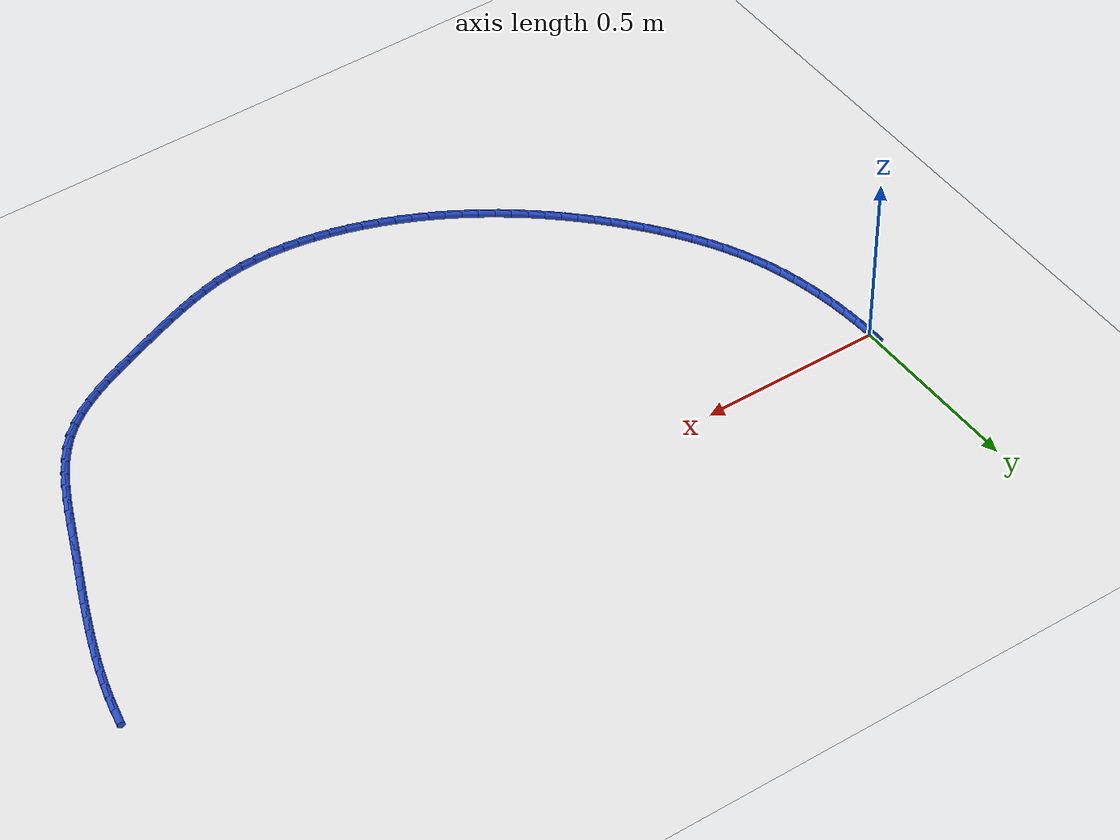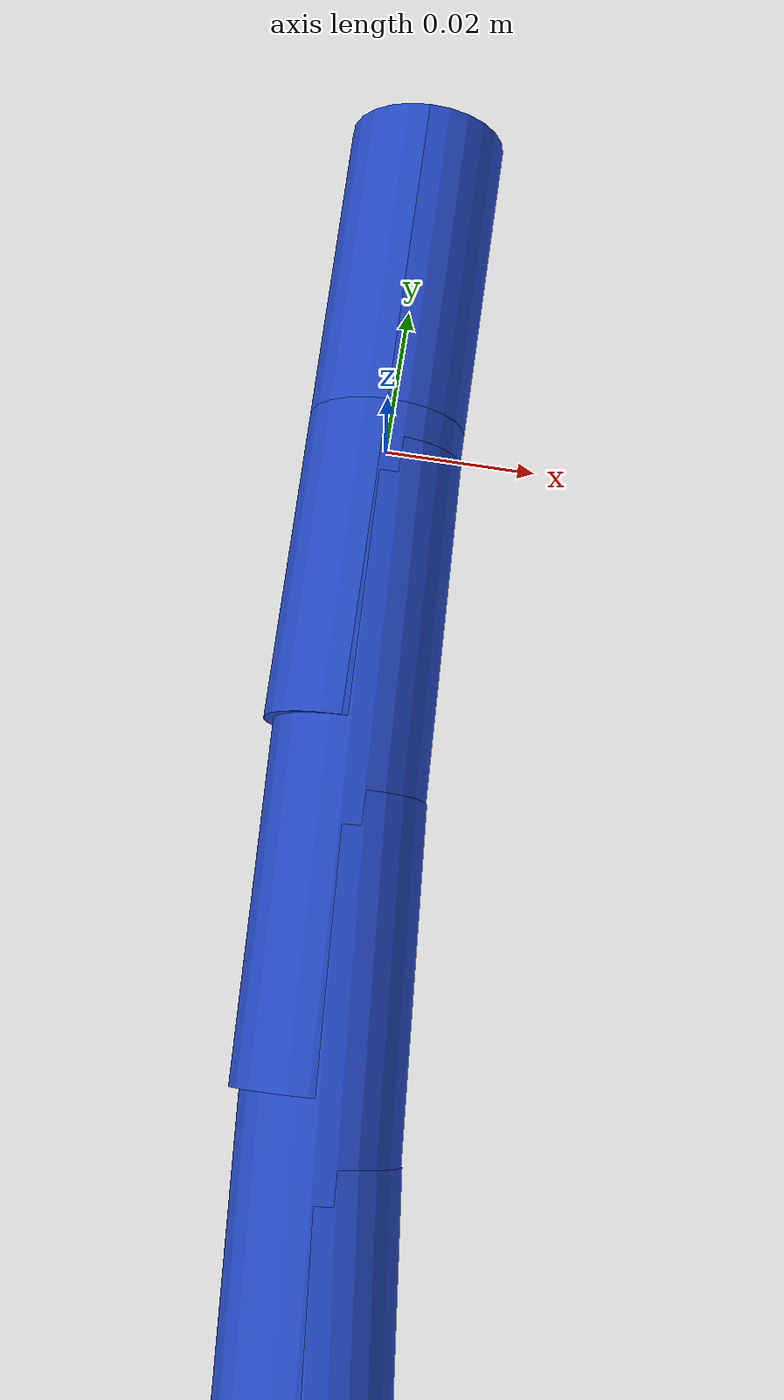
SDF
<sdf version="1.6">
 <world name="default">
  <model name="ground_plane">
   <static>1</static>
   <link name="link">
    <collision name="collision">
     <geometry><plane><normal>0 0 1</normal><size>100 100</size></plane></geometry>
     <surface><friction><ode><mu>100</mu><mu2>50</mu2></ode></friction></surface>
    </collision>
    <visual name="visual">
     <cast_shadows>0</cast_shadows>
     <geometry><plane><normal>0 0 1</normal><size>100 100</size></plane></geometry>
     <material>
      <script><uri>file://media/materials/scripts/gazebo.material</uri><name>Gazebo/WhiteGlow</name></script>
     </material>
    </visual>
   </link>
  </model>
  <model name="line">
   <link name="link_0">
    <pose>-6.071532165918825e-18 -1.3877787807814457e-17 0.01 0 1.57 -1.5556435990401796</pose>
    <collision name="collision">
     <geometry><cylinder><radius>0.01</radius><length>0.08</length></cylinder></geometry>
    </collision>
    <visual name="visual">
     <material>
      <script><name>Gazebo/Blue</name><uri>file://media/materials/scripts/gazebo.material</uri></script>
     </material>
     <geometry><cylinder><radius>0.01</radius><length>0.08</length></cylinder></geometry>
    </visual>
   </link>
   <link name="link_81">
    <pose>2.1964408561254753 0.00042516780103233134 0.01 0 1.57 1.3386483158262905</pose>
    <collision name="collision">
     <geometry><cylinder><radius>0.01</radius><length>0.08</length></cylinder></geometry>
    </collision>
    <visual name="visual">
     <material>
      <script><name>Gazebo/Blue</name><uri>file://media/materials/scripts/gazebo.material</uri></script>
     </material>
     <geometry><cylinder><radius>0.01</radius><length>0.08</length></cylinder></geometry>
    </visual>
   </link>
   <link name="link_82">
    <pose>2.186597181142099 -0.04121293306297822 0.01 0 1.57 1.306550108630638</pose>
    <collision name="collision">
     <geometry><cylinder><radius>0.01</radius><length>0.08</length></cylinder></geometry>
    </collision>
    <visual name="visual">
     <material>
      <script><name>Gazebo/Blue</name><uri>file://media/materials/scripts/gazebo.material</uri></script>
     </material>
     <geometry><cylinder><radius>0.01</radius><length>0.08</length></cylinder></geometry>
    </visual>
   </link>
   <link name="link_83">
    <pose>2.175453241974101 -0.0823993106524817 0.01 0 1.57 1.2773348397771405</pose>
    <collision name="collision">
     <geometry><cylinder><radius>0.01</radius><length>0.08</length></cylinder></geometry>
    </collision>
    <visual name="visual">
     <material>
      <script><name>Gazebo/Blue</name><uri>file://media/materials/scripts/gazebo.material</uri></script>
     </material>
     <geometry><cylinder><radius>0.01</radius><length>0.08</length></cylinder></geometry>
    </visual>
   </link>
   <link name="link_84">
    <pose>2.1631245672862285 -0.12319755091855733 0.01 0 1.57 1.25112295713858</pose>
    <collision name="collision">
     <geometry><cylinder><radius>0.01</radius><length>0.08</length></cylinder></geometry>
    </collision>
    <visual name="visual">
     <material>
      <script><name>Gazebo/Blue</name><uri>file://media/materials/scripts/gazebo.material</uri></script>
     </material>
     <geometry><cylinder><radius>0.01</radius><length>0.08</length></cylinder></geometry>
    </visual>
   </link>
   <link name="link_85">
    <pose>2.1497266857432287 -0.16367123981228357 0.01 0 1.57 1.2279957565766804</pose>
    <collision name="collision">
     <geometry><cylinder><radius>0.01</radius><length>0.08</length></cylinder></geometry>
    </collision>
    <visual name="visual">
     <material>
      <script><name>Gazebo/Blue</name><uri>file://media/materials/scripts/gazebo.material</uri></script>
     </material>
     <geometry><cylinder><radius>0.01</radius><length>0.08</length></cylinder></geometry>
    </visual>
   </link>
   <link name="link_86">
    <pose>2.135375126009849 -0.20388396328473873 0.01 0 1.57 1.208001410424227</pose>
    <collision name="collision">
     <geometry><cylinder><radius>0.01</radius><length>0.08</length></cylinder></geometry>
    </collision>
    <visual name="visual">
     <material>
      <script><name>Gazebo/Blue</name><uri>file://media/materials/scripts/gazebo.material</uri></script>
     </material>
     <geometry><cylinder><radius>0.01</radius><length>0.08</length></cylinder></geometry>
    </visual>
   </link>
   <link name="link_87">
    <pose>2.1201854167508367 -0.24389930728700207 0.01 0 1.57 1.1911611524413928</pose>
    <collision name="collision">
     <geometry><cylinder><radius>0.01</radius><length>0.08</length></cylinder></geometry>
    </collision>
    <visual name="visual">
     <material>
      <script><name>Gazebo/Blue</name><uri>file://media/materials/scripts/gazebo.material</uri></script>
     </material>
     <geometry><cylinder><radius>0.01</radius><length>0.08</length></cylinder></geometry>
    </visual>
   </link>
   <link name="link_88">
    <pose>2.1042730866309394 -0.2837808577701505 0.01 0 1.57 1.1774751291894925</pose>
    <collision name="collision">
     <geometry><cylinder><radius>0.01</radius><length>0.08</length></cylinder></geometry>
    </collision>
    <visual name="visual">
     <material>
      <script><name>Gazebo/Blue</name><uri>file://media/materials/scripts/gazebo.material</uri></script>
     </material>
     <geometry><cylinder><radius>0.01</radius><length>0.08</length></cylinder></geometry>
    </visual>
   </link>
   <link name="link_89">
    <pose>2.0877536643149037 -0.3235922006852631 0.01 0 1.57 1.166927584554515</pose>
    <collision name="collision">
     <geometry><cylinder><radius>0.01</radius><length>0.08</length></cylinder></geometry>
    </collision>
    <visual name="visual">
     <material>
      <script><name>Gazebo/Blue</name><uri>file://media/materials/scripts/gazebo.material</uri></script>
     </material>
     <geometry><cylinder><radius>0.01</radius><length>0.08</length></cylinder></geometry>
    </visual>
   </link>
   <link name="link_90">
    <pose>2.070742678467478 -0.36339692198341844 0.01 0 1.57 1.1594911807247412</pose>
    <collision name="collision">
     <geometry><cylinder><radius>0.01</radius><length>0.08</length></cylinder></geometry>
    </collision>
    <visual name="visual">
     <material>
      <script><name>Gazebo/Blue</name><uri>file://media/materials/scripts/gazebo.material</uri></script>
     </material>
     <geometry><cylinder><radius>0.01</radius><length>0.08</length></cylinder></geometry>
    </visual>
   </link>
   <link name="link_91">
    <pose>2.0533556577534093 -0.403258607615695 0.01 0 1.57 1.1551303654355667</pose>
    <collision name="collision">
     <geometry><cylinder><radius>0.01</radius><length>0.08</length></cylinder></geometry>
    </collision>
    <visual name="visual">
     <material>
      <script><name>Gazebo/Blue</name><uri>file://media/materials/scripts/gazebo.material</uri></script>
     </material>
     <geometry><cylinder><radius>0.01</radius><length>0.08</length></cylinder></geometry>
    </visual>
   </link>
   <link name="link_92">
    <pose>2.035708130837444 -0.4432408435331716 0.01 0 1.57 1.1538037708779738</pose>
    <collision name="collision">
     <geometry><cylinder><radius>0.01</radius><length>0.08</length></cylinder></geometry>
    </collision>
    <visual name="visual">
     <material>
      <script><name>Gazebo/Blue</name><uri>file://media/materials/scripts/gazebo.material</uri></script>
     </material>
     <geometry><cylinder><radius>0.01</radius><length>0.08</length></cylinder></geometry>
    </visual>
   </link>
   <link name="link_93">
    <pose>2.0179156263843305 -0.4834072156869254 0.01 0 1.57 1.1554656788090165</pose>
    <collision name="collision">
     <geometry><cylinder><radius>0.01</radius><length>0.08</length></cylinder></geometry>
    </collision>
    <visual name="visual">
     <material>
      <script><name>Gazebo/Blue</name><uri>file://media/materials/scripts/gazebo.material</uri></script>
     </material>
     <geometry><cylinder><radius>0.01</radius><length>0.08</length></cylinder></geometry>
    </visual>
   </link>
   <link name="link_94">
    <pose>2.0000936730588164 -0.5238213100280357 0.01 0 1.57 1.159272365273835</pose>
    <collision name="collision">
     <geometry><cylinder><radius>0.01</radius><length>0.08</length></cylinder></geometry>
    </collision>
    <visual name="visual">
     <material>
      <script><name>Gazebo/Blue</name><uri>file://media/materials/scripts/gazebo.material</uri></script>
     </material>
     <geometry><cylinder><radius>0.01</radius><length>0.08</length></cylinder></geometry>
    </visual>
   </link>
   <link name="link_95">
    <pose>1.9823307757599986 -0.5645204308134997 0.01 0 1.57 1.1565465748614017</pose>
    <collision name="collision">
     <geometry><cylinder><radius>0.01</radius><length>0.08</length></cylinder></geometry>
    </collision>
    <visual name="visual">
     <material>
      <script><name>Gazebo/Blue</name><uri>file://media/materials/scripts/gazebo.material</uri></script>
     </material>
     <geometry><cylinder><radius>0.01</radius><length>0.08</length></cylinder></geometry>
    </visual>
   </link>
   <link name="link_96">
    <pose>1.964420182666547 -0.6052547333181036 0.01 0 1.57 1.1419255344002606</pose>
    <collision name="collision">
     <geometry><cylinder><radius>0.01</radius><length>0.08</length></cylinder></geometry>
    </collision>
    <visual name="visual">
     <material>
      <script><name>Gazebo/Blue</name><uri>file://media/materials/scripts/gazebo.material</uri></script>
     </material>
     <geometry><cylinder><radius>0.01</radius><length>0.08</length></cylinder></geometry>
    </visual>
   </link>
   <link name="link_97">
    <pose>1.9459732579769489 -0.6455974833635671 0.01 0 1.57 1.115000253752189</pose>
    <collision name="collision">
     <geometry><cylinder><radius>0.01</radius><length>0.08</length></cylinder></geometry>
    </collision>
    <visual name="visual">
     <material>
      <script><name>Gazebo/Blue</name><uri>file://media/materials/scripts/gazebo.material</uri></script>
     </material>
     <geometry><cylinder><radius>0.01</radius><length>0.08</length></cylinder></geometry>
    </visual>
   </link>
   <link name="link_98">
    <pose>1.9265986986261592 -0.685119352751036 0.01 0 1.57 1.0751210516949843</pose>
    <collision name="collision">
     <geometry><cylinder><radius>0.01</radius><length>0.08</length></cylinder></geometry>
    </collision>
    <visual name="visual">
     <material>
      <script><name>Gazebo/Blue</name><uri>file://media/materials/scripts/gazebo.material</uri></script>
     </material>
     <geometry><cylinder><radius>0.01</radius><length>0.08</length></cylinder></geometry>
    </visual>
   </link>
   <link name="link_99">
    <pose>1.905905201549135 -0.7233910132816553 0.01 0 1.57 1.0214139514335978</pose>
    <collision name="collision">
     <geometry><cylinder><radius>0.01</radius><length>0.08</length></cylinder></geometry>
    </collision>
    <visual name="visual">
     <material>
      <script><name>Gazebo/Blue</name><uri>file://media/materials/scripts/gazebo.material</uri></script>
     </material>
     <geometry><cylinder><radius>0.01</radius><length>0.08</length></cylinder></geometry>
    </visual>
   </link>
   <link name="link_100">
    <pose>1.8835014636808318 -0.7599831367565699 0.01 0 1.57 0.9529631503722887</pose>
    <collision name="collision">
     <geometry><cylinder><radius>0.01</radius><length>0.08</length></cylinder></geometry>
    </collision>
    <visual name="visual">
     <material>
      <script><name>Gazebo/Blue</name><uri>file://media/materials/scripts/gazebo.material</uri></script>
     </material>
     <geometry><cylinder><radius>0.01</radius><length>0.08</length></cylinder></geometry>
    </visual>
   </link>
   <link name="link_101">
    <pose>1.8589961819562049 -0.7944663949769253 0.01 0 1.57 0.8691291193887722</pose>
    <collision name="collision">
     <geometry><cylinder><radius>0.01</radius><length>0.08</length></cylinder></geometry>
    </collision>
    <visual name="visual">
     <material>
      <script><name>Gazebo/Blue</name><uri>file://media/materials/scripts/gazebo.material</uri></script>
     </material>
     <geometry><cylinder><radius>0.01</radius><length>0.08</length></cylinder></geometry>
    </visual>
   </link>
   <link name="link_102">
    <pose>1.8319980533102118 -0.8264114597438659 0.01 0 1.57 0.7702380405950181</pose>
    <collision name="collision">
     <geometry><cylinder><radius>0.01</radius><length>0.08</length></cylinder></geometry>
    </collision>
    <visual name="visual">
     <material>
      <script><name>Gazebo/Blue</name><uri>file://media/materials/scripts/gazebo.material</uri></script>
     </material>
     <geometry><cylinder><radius>0.01</radius><length>0.08</length></cylinder></geometry>
    </visual>
   </link>
   <link name="link_103">
    <pose>1.802121859328572 -0.8553952606084043 0.01 0 1.57 0.6687495687025617</pose>
    <collision name="collision">
     <geometry><cylinder><radius>0.01</radius><length>0.08</length></cylinder></geometry>
    </collision>
    <visual name="visual">
     <material>
      <script><name>Gazebo/Blue</name><uri>file://media/materials/scripts/gazebo.material</uri></script>
     </material>
     <geometry><cylinder><radius>0.01</radius><length>0.08</length></cylinder></geometry>
    </visual>
   </link>
   <link name="link_104">
    <pose>1.7693057177101876 -0.881327261657721 0.01 0 1.57 0.5825405605768036</pose>
    <collision name="collision">
     <geometry><cylinder><radius>0.01</radius><length>0.08</length></cylinder></geometry>
    </collision>
    <visual name="visual">
     <material>
      <script><name>Gazebo/Blue</name><uri>file://media/materials/scripts/gazebo.material</uri></script>
     </material>
     <geometry><cylinder><radius>0.01</radius><length>0.08</length></cylinder></geometry>
    </visual>
   </link>
   <link name="link_105">
    <pose>1.733966283904288 -0.9046090784039568 0.01 0 1.57 0.5130246278094135</pose>
    <collision name="collision">
     <geometry><cylinder><radius>0.01</radius><length>0.08</length></cylinder></geometry>
    </collision>
    <visual name="visual">
     <material>
      <script><name>Gazebo/Blue</name><uri>file://media/materials/scripts/gazebo.material</uri></script>
     </material>
     <geometry><cylinder><radius>0.01</radius><length>0.08</length></cylinder></geometry>
    </visual>
   </link>
   <link name="link_106">
    <pose>1.696558841707172 -0.9256820536243247 0.01 0 1.57 0.4594439207479052</pose>
    <collision name="collision">
     <geometry><cylinder><radius>0.01</radius><length>0.08</length></cylinder></geometry>
    </collision>
    <visual name="visual">
     <material>
      <script><name>Gazebo/Blue</name><uri>file://media/materials/scripts/gazebo.material</uri></script>
     </material>
     <geometry><cylinder><radius>0.01</radius><length>0.08</length></cylinder></geometry>
    </visual>
   </link>
   <link name="link_107">
    <pose>1.6575386749151406 -0.944987530096036 0.01 0 1.57 0.420769685211544</pose>
    <collision name="collision">
     <geometry><cylinder><radius>0.01</radius><length>0.08</length></cylinder></geometry>
    </collision>
    <visual name="visual">
     <material>
      <script><name>Gazebo/Blue</name><uri>file://media/materials/scripts/gazebo.material</uri></script>
     </material>
     <geometry><cylinder><radius>0.01</radius><length>0.08</length></cylinder></geometry>
    </visual>
   </link>
   <link name="link_108">
    <pose>1.6173610673244907 -0.9629668505963026 0.01 0 1.57 0.3960675543929409</pose>
    <collision name="collision">
     <geometry><cylinder><radius>0.01</radius><length>0.08</length></cylinder></geometry>
    </collision>
    <visual name="visual">
     <material>
      <script><name>Gazebo/Blue</name><uri>file://media/materials/scripts/gazebo.material</uri></script>
     </material>
     <geometry><cylinder><radius>0.01</radius><length>0.08</length></cylinder></geometry>
    </visual>
   </link>
   <link name="link_109">
    <pose>1.5764813027315216 -0.9800613579023368 0.01 0 1.57 0.3846995755682915</pose>
    <collision name="collision">
     <geometry><cylinder><radius>0.01</radius><length>0.08</length></cylinder></geometry>
    </collision>
    <visual name="visual">
     <material>
      <script><name>Gazebo/Blue</name><uri>file://media/materials/scripts/gazebo.material</uri></script>
     </material>
     <geometry><cylinder><radius>0.01</radius><length>0.08</length></cylinder></geometry>
    </visual>
   </link>
   <link name="link_110">
    <pose>1.5353546649325327 -0.9967123947913508 0.01 0 1.57 0.3830966818456088</pose>
    <collision name="collision">
     <geometry><cylinder><radius>0.01</radius><length>0.08</length></cylinder></geometry>
    </collision>
    <visual name="visual">
     <material>
      <script><name>Gazebo/Blue</name><uri>file://media/materials/scripts/gazebo.material</uri></script>
     </material>
     <geometry><cylinder><radius>0.01</radius><length>0.08</length></cylinder></geometry>
    </visual>
   </link>
   <link name="link_111">
    <pose>1.4943497888446822 -1.0132376828396994 0.01 0 1.57 0.3776451761244076</pose>
    <collision name="collision">
     <geometry><cylinder><radius>0.01</radius><length>0.08</length></cylinder></geometry>
    </collision>
    <visual name="visual">
     <material>
      <script><name>Gazebo/Blue</name><uri>file://media/materials/scripts/gazebo.material</uri></script>
     </material>
     <geometry><cylinder><radius>0.01</radius><length>0.08</length></cylinder></geometry>
    </visual>
   </link>
   <link name="link_112">
    <pose>1.4534811405801795 -1.0294496540757394 0.01 0 1.57 0.36474771422855873</pose>
    <collision name="collision">
     <geometry><cylinder><radius>0.01</radius><length>0.08</length></cylinder></geometry>
    </collision>
    <visual name="visual">
     <material>
      <script><name>Gazebo/Blue</name><uri>file://media/materials/scripts/gazebo.material</uri></script>
     </material>
     <geometry><cylinder><radius>0.01</radius><length>0.08</length></cylinder></geometry>
    </visual>
   </link>
   <link name="link_113">
    <pose>1.4126727095408893 -1.0450316581935508 0.01 0 1.57 0.34422491939476557</pose>
    <collision name="collision">
     <geometry><cylinder><radius>0.01</radius><length>0.08</length></cylinder></geometry>
    </collision>
    <visual name="visual">
     <material>
      <script><name>Gazebo/Blue</name><uri>file://media/materials/scripts/gazebo.material</uri></script>
     </material>
     <geometry><cylinder><radius>0.01</radius><length>0.08</length></cylinder></geometry>
    </visual>
   </link>
   <link name="link_114">
    <pose>1.3718484850955617 -1.0596670448399637 0.01 0 1.57 0.3158758731033289</pose>
    <collision name="collision">
     <geometry><cylinder><radius>0.01</radius><length>0.08</length></cylinder></geometry>
    </collision>
    <visual name="visual">
     <material>
      <script><name>Gazebo/Blue</name><uri>file://media/materials/scripts/gazebo.material</uri></script>
     </material>
     <geometry><cylinder><radius>0.01</radius><length>0.08</length></cylinder></geometry>
    </visual>
   </link>
   <link name="link_115">
    <pose>1.3309324566129448 -1.0730391636618088 0.01 0 1.57 0.2795135177924136</pose>
    <collision name="collision">
     <geometry><cylinder><radius>0.01</radius><length>0.08</length></cylinder></geometry>
    </collision>
    <visual name="visual">
     <material>
      <script><name>Gazebo/Blue</name><uri>file://media/materials/scripts/gazebo.material</uri></script>
     </material>
     <geometry><cylinder><radius>0.01</radius><length>0.08</length></cylinder></geometry>
    </visual>
   </link>
   <link name="link_116">
    <pose>1.2898486134617875 -1.0848313643059166 0.01 0 1.57 0.23501850627110452</pose>
    <collision name="collision">
     <geometry><cylinder><radius>0.01</radius><length>0.08</length></cylinder></geometry>
    </collision>
    <visual name="visual">
     <material>
      <script><name>Gazebo/Blue</name><uri>file://media/materials/scripts/gazebo.material</uri></script>
     </material>
     <geometry><cylinder><radius>0.01</radius><length>0.08</length></cylinder></geometry>
    </visual>
   </link>
   <link name="link_117">
    <pose>1.2485209450108399 -1.0947269964191175 0.01 0 1.57 0.18241224618610427</pose>
    <collision name="collision">
     <geometry><cylinder><radius>0.01</radius><length>0.08</length></cylinder></geometry>
    </collision>
    <visual name="visual">
     <material>
      <script><name>Gazebo/Blue</name><uri>file://media/materials/scripts/gazebo.material</uri></script>
     </material>
     <geometry><cylinder><radius>0.01</radius><length>0.08</length></cylinder></geometry>
    </visual>
   </link>
   <link name="link_118">
    <pose>1.206873440628851 -1.102409409648242 0.01 0 1.57 0.12195500875876021</pose>
    <collision name="collision">
     <geometry><cylinder><radius>0.01</radius><length>0.08</length></cylinder></geometry>
    </collision>
    <visual name="visual">
     <material>
      <script><name>Gazebo/Blue</name><uri>file://media/materials/scripts/gazebo.material</uri></script>
     </material>
     <geometry><cylinder><radius>0.01</radius><length>0.08</length></cylinder></geometry>
    </visual>
   </link>
   <link name="link_119">
    <pose>1.1648302709159835 -1.1075623567808714 0.01 0 1.57 0.05711761166594266</pose>
    <collision name="collision">
     <geometry><cylinder><radius>0.01</radius><length>0.08</length></cylinder></geometry>
    </collision>
    <visual name="visual">
     <material>
      <script><name>Gazebo/Blue</name><uri>file://media/materials/scripts/gazebo.material</uri></script>
     </material>
     <geometry><cylinder><radius>0.01</radius><length>0.08</length></cylinder></geometry>
    </visual>
   </link>
   <link name="link_120">
    <pose>1.1223698424020705 -1.1099902358773572 0.01 0 1.57 -0.004766423676371933</pose>
    <collision name="collision">
     <geometry><cylinder><radius>0.01</radius><length>0.08</length></cylinder></geometry>
    </collision>
    <visual name="visual">
     <material>
      <script><name>Gazebo/Blue</name><uri>file://media/materials/scripts/gazebo.material</uri></script>
     </material>
     <geometry><cylinder><radius>0.01</radius><length>0.08</length></cylinder></geometry>
    </visual>
   </link>
   <link name="link_121">
    <pose>1.0796004507642607 -1.1097863772926213 0.01 0 1.57 -0.06277770039831199</pose>
    <collision name="collision">
     <geometry><cylinder><radius>0.01</radius><length>0.08</length></cylinder></geometry>
    </collision>
    <visual name="visual">
     <material>
      <script><name>Gazebo/Blue</name><uri>file://media/materials/scripts/gazebo.material</uri></script>
     </material>
     <geometry><cylinder><radius>0.01</radius><length>0.08</length></cylinder></geometry>
    </visual>
   </link>
   <link name="link_122">
    <pose>1.0366494309230476 -1.1070864632822621 0.01 0 1.57 -0.11712797771402937</pose>
    <collision name="collision">
     <geometry><cylinder><radius>0.01</radius><length>0.08</length></cylinder></geometry>
    </collision>
    <visual name="visual">
     <material>
      <script><name>Gazebo/Blue</name><uri>file://media/materials/scripts/gazebo.material</uri></script>
     </material>
     <geometry><cylinder><radius>0.01</radius><length>0.08</length></cylinder></geometry>
    </visual>
   </link>
   <link name="link_123">
    <pose>0.9936441177989223 -1.1020261761018784 0.01 0 1.57 -0.16808434238684916</pose>
    <collision name="collision">
     <geometry><cylinder><radius>0.01</radius><length>0.08</length></cylinder></geometry>
    </collision>
    <visual name="visual">
     <material>
      <script><name>Gazebo/Blue</name><uri>file://media/materials/scripts/gazebo.material</uri></script>
     </material>
     <geometry><cylinder><radius>0.01</radius><length>0.08</length></cylinder></geometry>
    </visual>
   </link>
   <link name="link_124">
    <pose>0.9507118463123772 -1.0947411980070685 0.01 0 1.57 -0.21594687541972785</pose>
    <collision name="collision">
     <geometry><cylinder><radius>0.01</radius><length>0.08</length></cylinder></geometry>
    </collision>
    <visual name="visual">
     <material>
      <script><name>Gazebo/Blue</name><uri>file://media/materials/scripts/gazebo.material</uri></script>
     </material>
     <geometry><cylinder><radius>0.01</radius><length>0.08</length></cylinder></geometry>
    </visual>
   </link>
   <link name="link_125">
    <pose>0.9079799513839042 -1.0853672112534314 0.01 0 1.57 -0.26103235296296673</pose>
    <collision name="collision">
     <geometry><cylinder><radius>0.01</radius><length>0.08</length></cylinder></geometry>
    </collision>
    <visual name="visual">
     <material>
      <script><name>Gazebo/Blue</name><uri>file://media/materials/scripts/gazebo.material</uri></script>
     </material>
     <geometry><cylinder><radius>0.01</radius><length>0.08</length></cylinder></geometry>
    </visual>
   </link>
   <link name="link_126">
    <pose>0.865575767933995 -1.0740398980965657 0.01 0 1.57 -0.3036632955091763</pose>
    <collision name="collision">
     <geometry><cylinder><radius>0.01</radius><length>0.08</length></cylinder></geometry>
    </collision>
    <visual name="visual">
     <material>
      <script><name>Gazebo/Blue</name><uri>file://media/materials/scripts/gazebo.material</uri></script>
     </material>
     <geometry><cylinder><radius>0.01</radius><length>0.08</length></cylinder></geometry>
    </visual>
   </link>
   <link name="link_127">
    <pose>0.8236266308831433 -1.06089494079207 0.01 0 1.57 -0.3441614344299338</pose>
    <collision name="collision">
     <geometry><cylinder><radius>0.01</radius><length>0.08</length></cylinder></geometry>
    </collision>
    <visual name="visual">
     <material>
      <script><name>Gazebo/Blue</name><uri>file://media/materials/scripts/gazebo.material</uri></script>
     </material>
     <geometry><cylinder><radius>0.01</radius><length>0.08</length></cylinder></geometry>
    </visual>
   </link>
   <link name="link_128">
    <pose>0.7822598751518404 -1.0460680215955434 0.01 0 1.57 -0.38284487604236295</pose>
    <collision name="collision">
     <geometry><cylinder><radius>0.01</radius><length>0.08</length></cylinder></geometry>
    </collision>
    <visual name="visual">
     <material>
      <script><name>Gazebo/Blue</name><uri>file://media/materials/scripts/gazebo.material</uri></script>
     </material>
     <geometry><cylinder><radius>0.01</radius><length>0.08</length></cylinder></geometry>
    </visual>
   </link>
   <link name="link_129">
    <pose>0.7416028098062205 -1.0296948032508264 0.01 0 1.57 -0.4202095894191098</pose>
    <collision name="collision">
     <geometry><cylinder><radius>0.01</radius><length>0.08</length></cylinder></geometry>
    </collision>
    <visual name="visual">
     <material>
      <script><name>Gazebo/Blue</name><uri>file://media/materials/scripts/gazebo.material</uri></script>
     </material>
     <geometry><cylinder><radius>0.01</radius><length>0.08</length></cylinder></geometry>
    </visual>
   </link>
   <link name="link_130">
    <pose>0.7017544687707683 -1.0118896098280485 0.01 0 1.57 -0.4569316196711439</pose>
    <collision name="collision">
     <geometry><cylinder><radius>0.01</radius><length>0.08</length></cylinder></geometry>
    </collision>
    <visual name="visual">
     <material>
      <script><name>Gazebo/Blue</name><uri>file://media/materials/scripts/gazebo.material</uri></script>
     </material>
     <geometry><cylinder><radius>0.01</radius><length>0.08</length></cylinder></geometry>
    </visual>
   </link>
   <link name="link_131">
    <pose>0.6627316553565554 -0.9927047076276366 0.01 0 1.57 -0.4930649117595983</pose>
    <collision name="collision">
     <geometry><cylinder><radius>0.01</radius><length>0.08</length></cylinder></geometry>
    </collision>
    <visual name="visual">
     <material>
      <script><name>Gazebo/Blue</name><uri>file://media/materials/scripts/gazebo.material</uri></script>
     </material>
     <geometry><cylinder><radius>0.01</radius><length>0.08</length></cylinder></geometry>
    </visual>
   </link>
   <link name="link_132">
    <pose>0.624536307318428 -0.9721811442174012 0.01 0 1.57 -0.5285610413310684</pose>
    <collision name="collision">
     <geometry><cylinder><radius>0.01</radius><length>0.08</length></cylinder></geometry>
    </collision>
    <visual name="visual">
     <material>
      <script><name>Gazebo/Blue</name><uri>file://media/materials/scripts/gazebo.material</uri></script>
     </material>
     <geometry><cylinder><radius>0.01</radius><length>0.08</length></cylinder></geometry>
    </visual>
   </link>
   <link name="link_133">
    <pose>0.5871703624112307 -0.9503599671651525 0.01 0 1.57 -0.5633799745570102</pose>
    <collision name="collision">
     <geometry><cylinder><radius>0.01</radius><length>0.08</length></cylinder></geometry>
    </collision>
    <visual name="visual">
     <material>
      <script><name>Gazebo/Blue</name><uri>file://media/materials/scripts/gazebo.material</uri></script>
     </material>
     <geometry><cylinder><radius>0.01</radius><length>0.08</length></cylinder></geometry>
    </visual>
   </link>
   <link name="link_134">
    <pose>0.550635758389808 -0.9272822240387006 0.01 0 1.57 -0.59748995071038</pose>
    <collision name="collision">
     <geometry><cylinder><radius>0.01</radius><length>0.08</length></cylinder></geometry>
    </collision>
    <visual name="visual">
     <material>
      <script><name>Gazebo/Blue</name><uri>file://media/materials/scripts/gazebo.material</uri></script>
     </material>
     <geometry><cylinder><radius>0.01</radius><length>0.08</length></cylinder></geometry>
    </visual>
   </link>
   <link name="link_135">
    <pose>0.5149344330090053 -0.9029889624058555 0.01 0 1.57 -0.6308672020288157</pose>
    <collision name="collision">
     <geometry><cylinder><radius>0.01</radius><length>0.08</length></cylinder></geometry>
    </collision>
    <visual name="visual">
     <material>
      <script><name>Gazebo/Blue</name><uri>file://media/materials/scripts/gazebo.material</uri></script>
     </material>
     <geometry><cylinder><radius>0.01</radius><length>0.08</length></cylinder></geometry>
    </visual>
   </link>
   <link name="link_136">
    <pose>0.48006832402366695 -0.877521229834427 0.01 0 1.57 -0.6634955424736059</pose>
    <collision name="collision">
     <geometry><cylinder><radius>0.01</radius><length>0.08</length></cylinder></geometry>
    </collision>
    <visual name="visual">
     <material>
      <script><name>Gazebo/Blue</name><uri>file://media/materials/scripts/gazebo.material</uri></script>
     </material>
     <geometry><cylinder><radius>0.01</radius><length>0.08</length></cylinder></geometry>
    </visual>
   </link>
   <link name="link_137">
    <pose>0.4460393691886388 -0.8509200738922262 0.01 0 1.57 -0.6953658576642986</pose>
    <collision name="collision">
     <geometry><cylinder><radius>0.01</radius><length>0.08</length></cylinder></geometry>
    </collision>
    <visual name="visual">
     <material>
      <script><name>Gazebo/Blue</name><uri>file://media/materials/scripts/gazebo.material</uri></script>
     </material>
     <geometry><cylinder><radius>0.01</radius><length>0.08</length></cylinder></geometry>
    </visual>
   </link>
   <link name="link_138">
    <pose>0.41284950625876526 -0.8232265421470625 0.01 0 1.57 -0.726475527007388</pose>
    <collision name="collision">
     <geometry><cylinder><radius>0.01</radius><length>0.08</length></cylinder></geometry>
    </collision>
    <visual name="visual">
     <material>
      <script><name>Gazebo/Blue</name><uri>file://media/materials/scripts/gazebo.material</uri></script>
     </material>
     <geometry><cylinder><radius>0.01</radius><length>0.08</length></cylinder></geometry>
    </visual>
   </link>
   <link name="link_139">
    <pose>0.38050067298889145 -0.7944816821667462 0.01 0 1.57 -0.756827806341864</pose>
    <collision name="collision">
     <geometry><cylinder><radius>0.01</radius><length>0.08</length></cylinder></geometry>
    </collision>
    <visual name="visual">
     <material>
      <script><name>Gazebo/Blue</name><uri>file://media/materials/scripts/gazebo.material</uri></script>
     </material>
     <geometry><cylinder><radius>0.01</radius><length>0.08</length></cylinder></geometry>
    </visual>
   </link>
   <link name="link_140">
    <pose>0.3489948071338623 -0.7647265415190875 0.01 0 1.57 -0.786431195796482</pose>
    <collision name="collision">
     <geometry><cylinder><radius>0.01</radius><length>0.08</length></cylinder></geometry>
    </collision>
    <visual name="visual">
     <material>
      <script><name>Gazebo/Blue</name><uri>file://media/materials/scripts/gazebo.material</uri></script>
     </material>
     <geometry><cylinder><radius>0.01</radius><length>0.08</length></cylinder></geometry>
    </visual>
   </link>
   <link name="link_141">
    <pose>0.318333846448522 -0.7340021677718956 0.01 0 1.57 -0.815300162007054</pose>
    <collision name="collision">
     <geometry><cylinder><radius>0.01</radius><length>0.08</length></cylinder></geometry>
    </collision>
    <visual name="visual">
     <material>
      <script><name>Gazebo/Blue</name><uri>file://media/materials/scripts/gazebo.material</uri></script>
     </material>
     <geometry><cylinder><radius>0.01</radius><length>0.08</length></cylinder></geometry>
    </visual>
   </link>
   <link name="link_142">
    <pose>0.28851979831014624 -0.7023495968850706 0.01 0 1.57 -0.844080971032143</pose>
    <collision name="collision">
     <geometry><cylinder><radius>0.01</radius><length>0.08</length></cylinder></geometry>
    </collision>
    <visual name="visual">
     <material>
      <script><name>Gazebo/Blue</name><uri>file://media/materials/scripts/gazebo.material</uri></script>
     </material>
     <geometry><cylinder><radius>0.01</radius><length>0.08</length></cylinder></geometry>
    </visual>
   </link>
   <link name="link_143">
    <pose>0.25958660510422793 -0.6698045404027955 0.01 0 1.57 -0.8744771997725389</pose>
    <collision name="collision">
     <geometry><cylinder><radius>0.01</radius><length>0.08</length></cylinder></geometry>
    </collision>
    <visual name="visual">
     <material>
      <script><name>Gazebo/Blue</name><uri>file://media/materials/scripts/gazebo.material</uri></script>
     </material>
     <geometry><cylinder><radius>0.01</radius><length>0.08</length></cylinder></geometry>
    </visual>
   </link>
   <link name="link_144">
    <pose>0.23165066303834417 -0.6363889626228776 0.01 0 1.57 -0.9068941884077272</pose>
    <collision name="collision">
     <geometry><cylinder><radius>0.01</radius><length>0.08</length></cylinder></geometry>
    </collision>
    <visual name="visual">
     <material>
      <script><name>Gazebo/Blue</name><uri>file://media/materials/scripts/gazebo.material</uri></script>
     </material>
     <geometry><cylinder><radius>0.01</radius><length>0.08</length></cylinder></geometry>
    </visual>
   </link>
   <link name="link_145">
    <pose>0.20484149711995994 -0.6021226389228045 0.01 0 1.57 -0.9414866416607948</pose>
    <collision name="collision">
     <geometry><cylinder><radius>0.01</radius><length>0.08</length></cylinder></geometry>
    </collision>
    <visual name="visual">
     <material>
      <script><name>Gazebo/Blue</name><uri>file://media/materials/scripts/gazebo.material</uri></script>
     </material>
     <geometry><cylinder><radius>0.01</radius><length>0.08</length></cylinder></geometry>
    </visual>
   </link>
   <link name="link_146">
    <pose>0.17928863235653983 -0.5670253446800619 0.01 0 1.57 -0.9784099311328991</pose>
    <collision name="collision">
     <geometry><cylinder><radius>0.01</radius><length>0.08</length></cylinder></geometry>
    </collision>
    <visual name="visual">
     <material>
      <script><name>Gazebo/Blue</name><uri>file://media/materials/scripts/gazebo.material</uri></script>
     </material>
     <geometry><cylinder><radius>0.01</radius><length>0.08</length></cylinder></geometry>
    </visual>
   </link>
   <link name="link_147">
    <pose>0.15512159375554974 -0.531116855272138 0.01 0 1.57 -1.017815738618459</pose>
    <collision name="collision">
     <geometry><cylinder><radius>0.01</radius><length>0.08</length></cylinder></geometry>
    </collision>
    <visual name="visual">
     <material>
      <script><name>Gazebo/Blue</name><uri>file://media/materials/scripts/gazebo.material</uri></script>
     </material>
     <geometry><cylinder><radius>0.01</radius><length>0.08</length></cylinder></geometry>
    </visual>
   </link>
   <link name="link_148">
    <pose>0.1324699063244543 -0.494416946076519 0.01 0 1.57 -1.0598461167310094</pose>
    <collision name="collision">
     <geometry><cylinder><radius>0.01</radius><length>0.08</length></cylinder></geometry>
    </collision>
    <visual name="visual">
     <material>
      <script><name>Gazebo/Blue</name><uri>file://media/materials/scripts/gazebo.material</uri></script>
     </material>
     <geometry><cylinder><radius>0.01</radius><length>0.08</length></cylinder></geometry>
    </visual>
   </link>
   <link name="link_149">
    <pose>0.11146309507071854 -0.4569453924706918 0.01 0 1.57 -1.1046257363369267</pose>
    <collision name="collision">
     <geometry><cylinder><radius>0.01</radius><length>0.08</length></cylinder></geometry>
    </collision>
    <visual name="visual">
     <material>
      <script><name>Gazebo/Blue</name><uri>file://media/materials/scripts/gazebo.material</uri></script>
     </material>
     <geometry><cylinder><radius>0.01</radius><length>0.08</length></cylinder></geometry>
    </visual>
   </link>
   <link name="link_150">
    <pose>0.09223068500180744 -0.4187219698321431 0.01 0 1.57 -1.15225188620513</pose>
    <collision name="collision">
     <geometry><cylinder><radius>0.01</radius><length>0.08</length></cylinder></geometry>
    </collision>
    <visual name="visual">
     <material>
      <script><name>Gazebo/Blue</name><uri>file://media/materials/scripts/gazebo.material</uri></script>
     </material>
     <geometry><cylinder><radius>0.01</radius><length>0.08</length></cylinder></geometry>
    </visual>
   </link>
   <link name="link_151">
    <pose>0.07490218688724193 -0.37976645382015345 0.01 0 1.57 -1.2018313744851659</pose>
    <collision name="collision">
     <geometry><cylinder><radius>0.01</radius><length>0.08</length></cylinder></geometry>
    </collision>
    <visual name="visual">
     <material>
      <script><name>Gazebo/Blue</name><uri>file://media/materials/scripts/gazebo.material</uri></script>
     </material>
     <geometry><cylinder><radius>0.01</radius><length>0.08</length></cylinder></geometry>
    </visual>
   </link>
   <link name="link_152">
    <pose>0.05956404095145447 -0.3400994725364026 0.01 0 1.57 -1.2502124668167702</pose>
    <collision name="collision">
     <geometry><cylinder><radius>0.01</radius><length>0.08</length></cylinder></geometry>
    </collision>
    <visual name="visual">
     <material>
      <script><name>Gazebo/Blue</name><uri>file://media/materials/scripts/gazebo.material</uri></script>
     </material>
     <geometry><cylinder><radius>0.01</radius><length>0.08</length></cylinder></geometry>
    </visual>
   </link>
   <link name="link_153">
    <pose>0.046164638623809054 -0.2997443863128118 0.01 0 1.57 -1.2965566969987377</pose>
    <collision name="collision">
     <geometry><cylinder><radius>0.01</radius><length>0.08</length></cylinder></geometry>
    </collision>
    <visual name="visual">
     <material>
      <script><name>Gazebo/Blue</name><uri>file://media/materials/scripts/gazebo.material</uri></script>
     </material>
     <geometry><cylinder><radius>0.01</radius><length>0.08</length></cylinder></geometry>
    </visual>
   </link>
   <link name="link_154">
    <pose>0.03462476986432625 -0.25872510176328367 0.01 0 1.57 -1.3406772687473008</pose>
    <collision name="collision">
     <geometry><cylinder><radius>0.01</radius><length>0.08</length></cylinder></geometry>
    </collision>
    <visual name="visual">
     <material>
      <script><name>Gazebo/Blue</name><uri>file://media/materials/scripts/gazebo.material</uri></script>
     </material>
     <geometry><cylinder><radius>0.01</radius><length>0.08</length></cylinder></geometry>
    </visual>
   </link>
   <link name="link_155">
    <pose>0.024865224633026716 -0.21706552550172148 0.01 0 1.57 -1.3824408896501388</pose>
    <collision name="collision">
     <geometry><cylinder><radius>0.01</radius><length>0.08</length></cylinder></geometry>
    </collision>
    <visual name="visual">
     <material>
      <script><name>Gazebo/Blue</name><uri>file://media/materials/scripts/gazebo.material</uri></script>
     </material>
     <geometry><cylinder><radius>0.01</radius><length>0.08</length></cylinder></geometry>
    </visual>
   </link>
   <link name="link_156">
    <pose>0.01680679288993095 -0.17478956414202731 0.01 0 1.57 -1.4217635145187097</pose>
    <collision name="collision">
     <geometry><cylinder><radius>0.01</radius><length>0.08</length></cylinder></geometry>
    </collision>
    <visual name="visual">
     <material>
      <script><name>Gazebo/Blue</name><uri>file://media/materials/scripts/gazebo.material</uri></script>
     </material>
     <geometry><cylinder><radius>0.01</radius><length>0.08</length></cylinder></geometry>
    </visual>
   </link>
   <link name="link_157">
    <pose>0.010370264595059856 -0.13192112429810557 0.01 0 1.57 -1.458604339473171</pose>
    <collision name="collision">
     <geometry><cylinder><radius>0.01</radius><length>0.08</length></cylinder></geometry>
    </collision>
    <visual name="visual">
     <material>
      <script><name>Gazebo/Blue</name><uri>file://media/materials/scripts/gazebo.material</uri></script>
     </material>
     <geometry><cylinder><radius>0.01</radius><length>0.08</length></cylinder></geometry>
    </visual>
   </link>
   <link name="link_158">
    <pose>0.005476429708433914 -0.08848411258385847 0.01 0 1.57 -1.492958891543374</pose>
    <collision name="collision">
     <geometry><cylinder><radius>0.01</radius><length>0.08</length></cylinder></geometry>
    </collision>
    <visual name="visual">
     <material>
      <script><name>Gazebo/Blue</name><uri>file://media/materials/scripts/gazebo.material</uri></script>
     </material>
     <geometry><cylinder><radius>0.01</radius><length>0.08</length></cylinder></geometry>
    </visual>
   </link>
   <link name="link_159">
    <pose>0.0020460781900737525 -0.04450243561318897 0.01 0 1.57 -1.5248519132397362</pose>
    <collision name="collision">
     <geometry><cylinder><radius>0.01</radius><length>0.08</length></cylinder></geometry>
    </collision>
    <visual name="visual">
     <material>
      <script><name>Gazebo/Blue</name><uri>file://media/materials/scripts/gazebo.material</uri></script>
     </material>
     <geometry><cylinder><radius>0.01</radius><length>0.08</length></cylinder></geometry>
    </visual>
   </link>
   <link name="link_160">
    <pose>-1.734723475976807e-18 -2.7755575615628914e-17 0.01 0 1.57 -1.554330556534828</pose>
    <collision name="collision">
     <geometry><cylinder><radius>0.01</radius><length>0.08</length></cylinder></geometry>
    </collision>
    <visual name="visual">
     <material>
      <script><name>Gazebo/Blue</name><uri>file://media/materials/scripts/gazebo.material</uri></script>
     </material>
     <geometry><cylinder><radius>0.01</radius><length>0.08</length></cylinder></geometry>
    </visual>
   </link>
  </model>
 </world>
</sdf>
